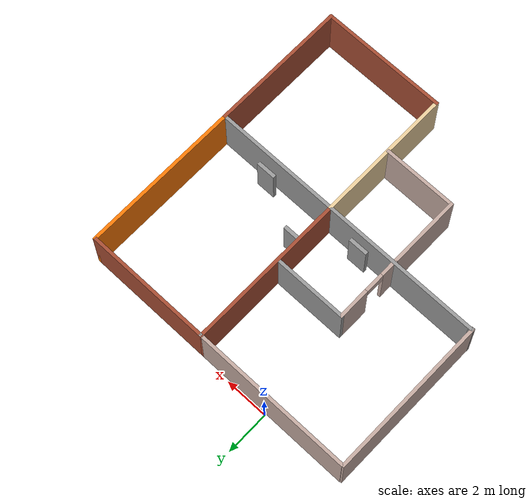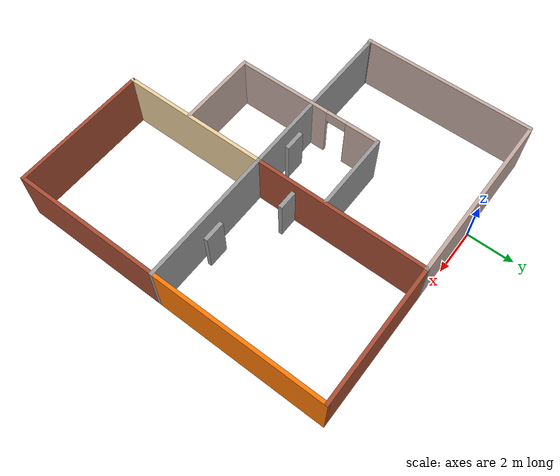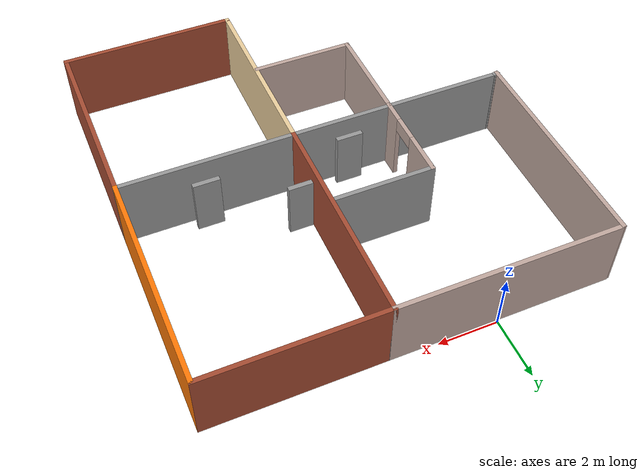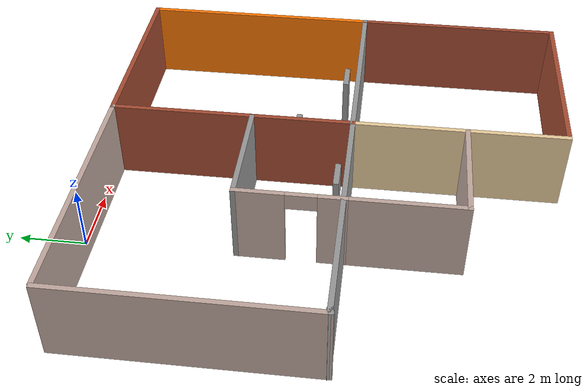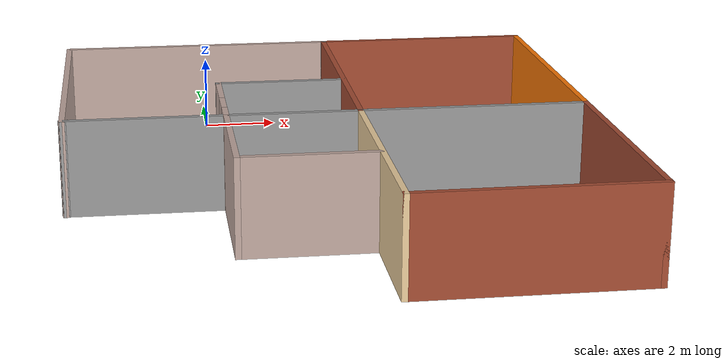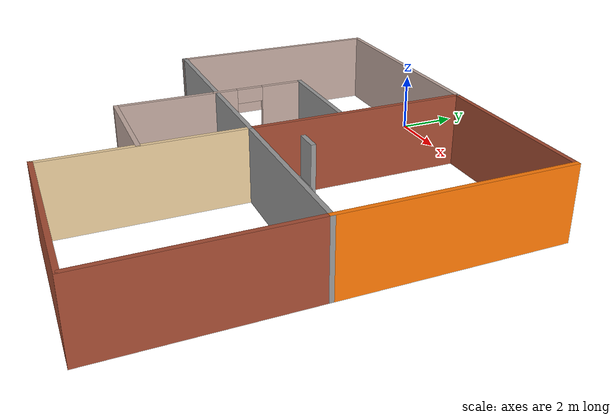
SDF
<sdf version="1.6">
 <world name="__default__">
  <gravity>0 0 -9.8</gravity>
  <magnetic_field>6e-06 2.3e-05 -4.2e-05</magnetic_field>
  <atmosphere type="adiabatic"/>
  <physics name="default_physics" default="0" type="ode">
   <max_step_size>0.001</max_step_size>
   <real_time_factor>1</real_time_factor>
   <real_time_update_rate>1000</real_time_update_rate>
  </physics>
  <scene><ambient>0.4 0.4 0.4 1</ambient><background>0.7 0.7 0.7 1</background><shadows>1</shadows></scene>
  <spherical_coordinates>
   <surface_model>EARTH_WGS84</surface_model>
   <latitude_deg>0</latitude_deg>
   <longitude_deg>0</longitude_deg>
   <elevation>0</elevation>
   <heading_deg>0</heading_deg>
  </spherical_coordinates>
  <model name="building-robot">
   <pose>2.68947 -6.99683 0 0 -0 0</pose>
   <link name="Door_1">
    <collision name="Door_1_Collision">
     <geometry><box><size>0.9 0.17 2</size></box></geometry>
     <pose>0 0 1 0 -0 0</pose>
    </collision>
    <visual name="Door_1_Visual">
     <pose>0 0 1 0 -0 0</pose>
     <geometry><box><size>0.9 0.17 2</size></box></geometry>
     <material>
      <script><uri>file://media/materials/scripts/gazebo.material</uri><name>Gazebo/Grey</name></script>
     </material>
    </visual>
    <pose>-1.01123 -0.198628 0 0 -0 0</pose>
   </link>
   <link name="Door_2">
    <collision name="Door_2_Collision">
     <geometry><box><size>0.9 0.17 2</size></box></geometry>
     <pose>0 0 1 0 -0 0</pose>
    </collision>
    <visual name="Door_2_Visual">
     <pose>0 0 1 0 -0 0</pose>
     <geometry><box><size>0.9 0.17 2</size></box></geometry>
     <material>
      <script><uri>file://media/materials/scripts/gazebo.material</uri><name>Gazebo/Grey</name></script>
     </material>
    </visual>
    <pose>1.24864 1.20034 0 0 -0 0</pose>
   </link>
   <link name="Door_3">
    <collision name="Door_3_Collision">
     <geometry><box><size>0.9 0.17 2</size></box></geometry>
     <pose>0 0 1 0 -0 0</pose>
    </collision>
    <visual name="Door_3_Visual">
     <pose>0 0 1 0 -0 0</pose>
     <geometry><box><size>0.9 0.17 2</size></box></geometry>
     <material>
      <script><uri>file://media/materials/scripts/gazebo.material</uri><name>Gazebo/Grey</name></script>
     </material>
    </visual>
    <pose>3.93896 -0.091015 0 0 -0 0</pose>
   </link>
   <link name="Wall_0">
    <collision name="Wall_0_Collision">
     <geometry><box><size>7.5 0.15 2.5</size></box></geometry>
     <pose>0 0 1.25 0 -0 0</pose>
    </collision>
    <visual name="Wall_0_Visual">
     <pose>0 0 1.25 0 -0 0</pose>
     <geometry><box><size>7.5 0.15 2.5</size></box></geometry>
     <material>
      <script><uri>file://media/materials/scripts/gazebo.material</uri><name>Gazebo/Grey</name></script>
      <ambient>0.760784 0.662745 0.627451 1</ambient>
     </material>
     <meta><layer>0</layer></meta>
    </visual>
    <pose>-2.87828 6.85 0 0 -0 0</pose>
   </link>
   <link name="Wall_1">
    <collision name="Wall_1_Collision">
     <geometry><box><size>0.16 0.15 2.5</size></box></geometry>
     <pose>0 0 1.25 0 -0 0</pose>
    </collision>
    <visual name="Wall_1_Visual">
     <pose>0 0 1.25 0 -0 0</pose>
     <geometry><box><size>0.16 0.15 2.5</size></box></geometry>
     <material>
      <script><uri>file://media/materials/scripts/gazebo.material</uri><name>Gazebo/Grey</name></script>
      <ambient>1 1 1 1</ambient>
     </material>
     <meta><layer>0</layer></meta>
    </visual>
    <pose>0.801724 6.85 0 0 -0 0</pose>
   </link>
   <link name="Wall_10">
    <collision name="Wall_10_Collision">
     <geometry><box><size>3.5 0.15 2.5</size></box></geometry>
     <pose>0 0 1.25 0 -0 0</pose>
    </collision>
    <visual name="Wall_10_Visual">
     <pose>0 0 1.25 0 -0 0</pose>
     <geometry><box><size>3.5 0.15 2.5</size></box></geometry>
     <material>
      <script><uri>file://media/materials/scripts/gazebo.material</uri><name>Gazebo/Grey</name></script>
      <ambient>0.760784 0.662745 0.627451 1</ambient>
     </material>
     <meta><layer>0</layer></meta>
    </visual>
    <pose>-0.910617 -3.9045 0 0 -0 0</pose>
   </link>
   <link name="Wall_12">
    <collision name="Wall_12_Collision">
     <geometry><box><size>6.5 0.15 2.5</size></box></geometry>
     <pose>0 0 1.25 0 -0 0</pose>
    </collision>
    <visual name="Wall_12_Visual">
     <pose>0 0 1.25 0 -0 0</pose>
     <geometry><box><size>6.5 0.15 2.5</size></box></geometry>
     <material>
      <script><uri>file://media/materials/scripts/gazebo.material</uri><name>Gazebo/Grey</name></script>
      <ambient>0.921569 0.807843 0.615686 1</ambient>
     </material>
     <meta><layer>0</layer></meta>
    </visual>
    <pose>0.806724 -3.675 0 0 0 -1.5708</pose>
   </link>
   <link name="Wall_13">
    <collision name="Wall_13_Collision">
     <geometry><box><size>6 0.15 2.5</size></box></geometry>
     <pose>0 0 1.25 0 -0 0</pose>
    </collision>
    <visual name="Wall_13_Visual">
     <pose>0 0 1.25 0 -0 0</pose>
     <geometry><box><size>6 0.15 2.5</size></box></geometry>
     <material>
      <script><uri>file://media/materials/scripts/gazebo.material</uri><name>Gazebo/Bricks</name></script>
      <ambient>0.996078 0.47451 0.0196078 1</ambient>
     </material>
     <meta><layer>0</layer></meta>
    </visual>
    <pose>3.73172 -6.85 0 0 -0 0</pose>
   </link>
   <link name="Wall_14">
    <collision name="Wall_14_Collision">
     <geometry><box><size>6.5 0.15 2.5</size></box></geometry>
     <pose>0 0 1.25 0 -0 0</pose>
    </collision>
    <visual name="Wall_14_Visual">
     <pose>0 0 1.25 0 -0 0</pose>
     <geometry><box><size>6.5 0.15 2.5</size></box></geometry>
     <material>
      <script><uri>file://media/materials/scripts/gazebo.material</uri><name>Gazebo/Bricks</name></script>
      <ambient>1 0.764706 0.305882 1</ambient>
     </material>
     <meta><layer>0</layer></meta>
    </visual>
    <pose>6.65672 -3.675 0 0 -0 1.5708</pose>
   </link>
   <link name="Wall_15">
    <collision name="Wall_15_Collision">
     <geometry><box><size>6 0.15 2.5</size></box></geometry>
     <pose>0 0 1.25 0 -0 0</pose>
    </collision>
    <visual name="Wall_15_Visual">
     <pose>0 0 1.25 0 -0 0</pose>
     <geometry><box><size>6 0.15 2.5</size></box></geometry>
     <material>
      <script><uri>file://media/materials/scripts/gazebo.material</uri><name>Gazebo/Grey</name></script>
      <ambient>1 1 1 1</ambient>
     </material>
     <meta><layer>0</layer></meta>
    </visual>
    <pose>3.73172 -0.5 0 0 -0 3.14159</pose>
   </link>
   <link name="Wall_18">
    <collision name="Wall_18_Collision">
     <geometry><box><size>6 0.15 2.5</size></box></geometry>
     <pose>0 0 1.25 0 -0 0</pose>
    </collision>
    <visual name="Wall_18_Visual">
     <pose>0 0 1.25 0 -0 0</pose>
     <geometry><box><size>6 0.15 2.5</size></box></geometry>
     <material>
      <script><uri>file://media/materials/scripts/gazebo.material</uri><name>Gazebo/Bricks</name></script>
      <ambient>1 0.764706 0.305882 1</ambient>
     </material>
     <meta><layer>0</layer></meta>
    </visual>
    <pose>3.73172 6.85 0 0 -0 0</pose>
   </link>
   <link name="Wall_19">
    <collision name="Wall_19_Collision">
     <geometry><box><size>7.5 0.15 2.5</size></box></geometry>
     <pose>0 0 1.25 0 -0 0</pose>
    </collision>
    <visual name="Wall_19_Visual">
     <pose>0 0 1.25 0 -0 0</pose>
     <geometry><box><size>7.5 0.15 2.5</size></box></geometry>
     <material>
      <script><uri>file://media/materials/scripts/gazebo.material</uri><name>Gazebo/Grey</name></script>
      <ambient>0.996078 0.47451 0.0196078 1</ambient>
     </material>
     <meta><layer>0</layer></meta>
    </visual>
    <pose>6.65672 3.175 0 0 0 -1.5708</pose>
   </link>
   <link name="Wall_2">
    <collision name="Wall_2_Collision">
     <geometry><box><size>7.5 0.15 2.5</size></box></geometry>
     <pose>0 0 1.25 0 -0 0</pose>
    </collision>
    <visual name="Wall_2_Visual">
     <pose>0 0 1.25 0 -0 0</pose>
     <geometry><box><size>7.5 0.15 2.5</size></box></geometry>
     <material>
      <script><uri>file://media/materials/scripts/gazebo.material</uri><name>Gazebo/Bricks</name></script>
      <ambient>0.921569 0.807843 0.615686 1</ambient>
     </material>
     <meta><layer>0</layer></meta>
    </visual>
    <pose>0.806724 3.175 0 0 0 -1.5708</pose>
   </link>
   <link name="Wall_3">
    <collision name="Wall_3_Collision">
     <geometry><box><size>7.5 0.15 2.5</size></box></geometry>
     <pose>0 0 1.25 0 -0 0</pose>
    </collision>
    <visual name="Wall_3_Visual">
     <pose>0 0 1.25 0 -0 0</pose>
     <geometry><box><size>7.5 0.15 2.5</size></box></geometry>
     <material>
      <script><uri>file://media/materials/scripts/gazebo.material</uri><name>Gazebo/Grey</name></script>
      <ambient>1 1 1 1</ambient>
     </material>
     <meta><layer>0</layer></meta>
    </visual>
    <pose>-2.86828 -0.5 0 0 -0 3.14159</pose>
   </link>
   <link name="Wall_4">
    <collision name="Wall_4_Collision">
     <geometry><box><size>0.25 0.15 2.5</size></box></geometry>
     <pose>0 0 1.25 0 -0 0</pose>
    </collision>
    <visual name="Wall_4_Visual">
     <pose>0 0 1.25 0 -0 0</pose>
     <geometry><box><size>0.25 0.15 2.5</size></box></geometry>
     <material>
      <script><uri>file://media/materials/scripts/gazebo.material</uri><name>Gazebo/Grey</name></script>
      <ambient>1 1 1 1</ambient>
     </material>
     <meta><layer>0</layer></meta>
    </visual>
    <pose>-6.59157 -0.512941 0 0 0 -2.87979</pose>
   </link>
   <link name="Wall_5">
    <collision name="Wall_5_Collision">
     <geometry><box><size>7.5 0.15 2.5</size></box></geometry>
     <pose>0 0 1.25 0 -0 0</pose>
    </collision>
    <visual name="Wall_5_Visual">
     <pose>0 0 1.25 0 -0 0</pose>
     <geometry><box><size>7.5 0.15 2.5</size></box></geometry>
     <material>
      <script><uri>file://media/materials/scripts/gazebo.material</uri><name>Gazebo/Grey</name></script>
      <ambient>0.760784 0.662745 0.627451 1</ambient>
     </material>
     <meta><layer>0</layer></meta>
    </visual>
    <pose>-6.63987 3.14912 0 0 -0 1.5708</pose>
   </link>
   <link name="Wall_7">
    <collision name="Wall_7_Collision">
     <geometry><box><size>3.5 0.15 2.5</size></box></geometry>
     <pose>0 0 1.25 0 -0 0</pose>
    </collision>
    <visual name="Wall_7_Visual">
     <pose>0 0 1.25 0 -0 0</pose>
     <geometry><box><size>3.5 0.15 2.5</size></box></geometry>
     <material>
      <script><uri>file://media/materials/scripts/gazebo.material</uri><name>Gazebo/Grey</name></script>
      <ambient>1 1 1 1</ambient>
     </material>
     <meta><layer>0</layer></meta>
    </visual>
    <pose>-0.910617 2.54549 0 0 -0 3.14159</pose>
   </link>
   <link name="Wall_8">
    <pose>-2.58562 0.995494 0 0 0 -1.5708</pose>
    <visual name="Wall_8_Visual_0">
     <pose>-0.870889 0 1.25 0 -0 0</pose>
     <geometry><box><size>1.50822 0.15 2.5</size></box></geometry>
     <material>
      <script><uri>file://media/materials/scripts/gazebo.material</uri><name>Gazebo/Grey</name></script>
      <ambient>0.760784 0.662745 0.627451 1</ambient>
     </material>
     <meta><layer>0</layer></meta>
    </visual>
    <collision name="Wall_8_Collision_0">
     <geometry><box><size>1.50822 0.15 2.5</size></box></geometry>
     <pose>-0.870889 0 1.25 0 -0 0</pose>
    </collision>
    <visual name="Wall_8_Visual_1">
     <pose>1.20411 0 1.25 0 -0 0</pose>
     <geometry><box><size>0.841779 0.15 2.5</size></box></geometry>
     <material>
      <script><uri>file://media/materials/scripts/gazebo.material</uri><name>Gazebo/Grey</name></script>
      <ambient>0.760784 0.662745 0.627451 1</ambient>
     </material>
     <meta><layer>0</layer></meta>
    </visual>
    <collision name="Wall_8_Collision_1">
     <geometry><box><size>0.841779 0.15 2.5</size></box></geometry>
     <pose>1.20411 0 1.25 0 -0 0</pose>
    </collision>
    <visual name="Wall_8_Visual_2">
     <pose>0.333221 0 2.25 0 -0 0</pose>
     <geometry><box><size>0.9 0.15 0.5</size></box></geometry>
     <material>
      <script><uri>file://media/materials/scripts/gazebo.material</uri><name>Gazebo/Grey</name></script>
      <ambient>0.760784 0.662745 0.627451 1</ambient>
     </material>
     <meta><layer>0</layer></meta>
    </visual>
    <collision name="Wall_8_Collision_2">
     <geometry><box><size>0.9 0.15 0.5</size></box></geometry>
     <pose>0.333221 0 2.25 0 -0 0</pose>
    </collision>
   </link>
   <link name="Wall_9">
    <collision name="Wall_9_Collision">
     <geometry><box><size>3.5 0.15 2.5</size></box></geometry>
     <pose>0 0 1.25 0 -0 0</pose>
    </collision>
    <visual name="Wall_9_Visual">
     <pose>0 0 1.25 0 -0 0</pose>
     <geometry><box><size>3.5 0.15 2.5</size></box></geometry>
     <material>
      <script><uri>file://media/materials/scripts/gazebo.material</uri><name>Gazebo/Grey</name></script>
      <ambient>0.760784 0.662745 0.627451 1</ambient>
     </material>
     <meta><layer>0</layer></meta>
    </visual>
    <pose>-2.58562 -2.22951 0 0 0 -1.5708</pose>
   </link>
   <static>1</static>
  </model>
 </world>
</sdf>
